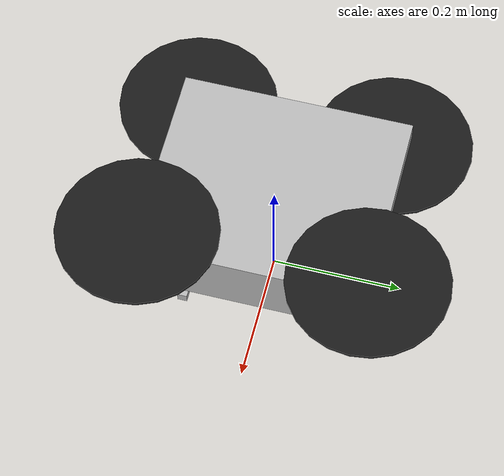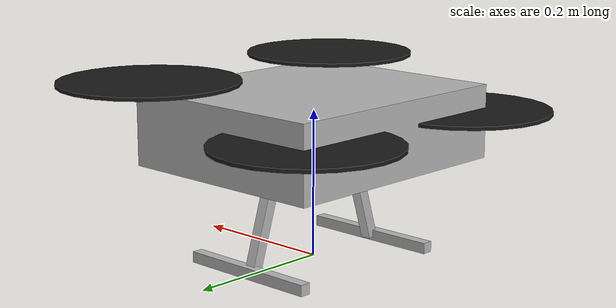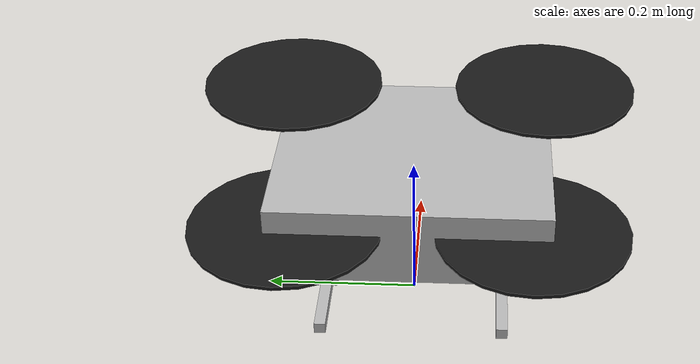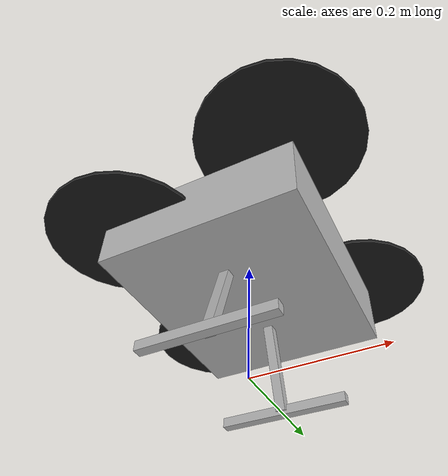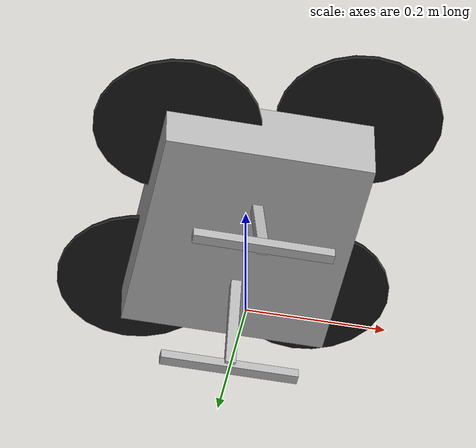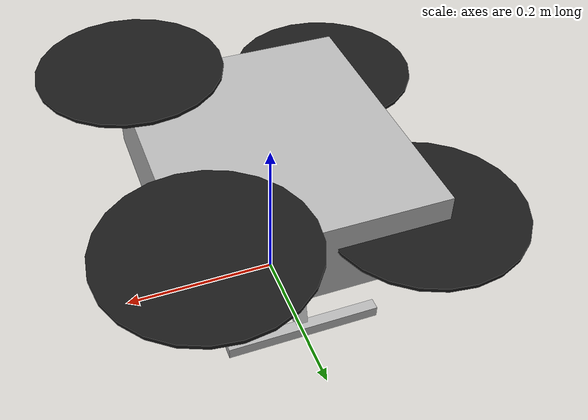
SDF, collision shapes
<?xml version="1.0" encoding="UTF-8"?>
<sdf version='1.9'>
  <model name='bq410'>
    <include merge='true'>
      <uri>model://bq410_base</uri>
    </include>

    <!-- Rotor 0 — front-right (CCW) → PX4 CA_ROTOR0 -->
    <plugin filename="gz-sim-multicopter-motor-model-system"
      name="gz::sim::systems::MulticopterMotorModel">
      <jointName>rotor_0_joint</jointName>
      <linkName>rotor_0</linkName>
      <turningDirection>ccw</turningDirection>
      <timeConstantUp>0.0125</timeConstantUp>
      <timeConstantDown>0.025</timeConstantDown>
      <maxRotVelocity>1100.0</maxRotVelocity>
      <motorConstant>8.54858e-06</motorConstant>
      <momentConstant>0.05</momentConstant>
      <commandSubTopic>command/motor_speed</commandSubTopic>
      <motorNumber>0</motorNumber>
      <rotorDragCoefficient>2.0673e-04</rotorDragCoefficient>
      <rollingMomentCoefficient>1e-06</rollingMomentCoefficient>
      <rotorVelocitySlowdownSim>10</rotorVelocitySlowdownSim>
      <motorType>velocity</motorType>
    </plugin>

    <!-- Rotor 1 — rear-left (CCW) → PX4 CA_ROTOR1 -->
    <plugin filename="gz-sim-multicopter-motor-model-system"
      name="gz::sim::systems::MulticopterMotorModel">
      <jointName>rotor_1_joint</jointName>
      <linkName>rotor_1</linkName>
      <turningDirection>ccw</turningDirection>
      <timeConstantUp>0.0125</timeConstantUp>
      <timeConstantDown>0.025</timeConstantDown>
      <maxRotVelocity>1100.0</maxRotVelocity>
      <motorConstant>8.54858e-06</motorConstant>
      <momentConstant>0.05</momentConstant>
      <commandSubTopic>command/motor_speed</commandSubTopic>
      <motorNumber>1</motorNumber>
      <rotorDragCoefficient>2.0673e-04</rotorDragCoefficient>
      <rollingMomentCoefficient>1e-06</rollingMomentCoefficient>
      <rotorVelocitySlowdownSim>10</rotorVelocitySlowdownSim>
      <motorType>velocity</motorType>
    </plugin>

    <!-- Rotor 2 — front-left (CW) → PX4 CA_ROTOR2 -->
    <plugin filename="gz-sim-multicopter-motor-model-system"
      name="gz::sim::systems::MulticopterMotorModel">
      <jointName>rotor_2_joint</jointName>
      <linkName>rotor_2</linkName>
      <turningDirection>cw</turningDirection>
      <timeConstantUp>0.0125</timeConstantUp>
      <timeConstantDown>0.025</timeConstantDown>
      <maxRotVelocity>1100.0</maxRotVelocity>
      <motorConstant>8.54858e-06</motorConstant>
      <momentConstant>0.05</momentConstant>
      <commandSubTopic>command/motor_speed</commandSubTopic>
      <motorNumber>2</motorNumber>
      <rotorDragCoefficient>2.0673e-04</rotorDragCoefficient>
      <rollingMomentCoefficient>1e-06</rollingMomentCoefficient>
      <rotorVelocitySlowdownSim>10</rotorVelocitySlowdownSim>
      <motorType>velocity</motorType>
    </plugin>

    <!-- Rotor 3 — rear-right (CW) → PX4 CA_ROTOR3 -->
    <plugin filename="gz-sim-multicopter-motor-model-system"
      name="gz::sim::systems::MulticopterMotorModel">
      <jointName>rotor_3_joint</jointName>
      <linkName>rotor_3</linkName>
      <turningDirection>cw</turningDirection>
      <timeConstantUp>0.0125</timeConstantUp>
      <timeConstantDown>0.025</timeConstantDown>
      <maxRotVelocity>1100.0</maxRotVelocity>
      <motorConstant>8.54858e-06</motorConstant>
      <momentConstant>0.05</momentConstant>
      <commandSubTopic>command/motor_speed</commandSubTopic>
      <motorNumber>3</motorNumber>
      <rotorDragCoefficient>2.0673e-04</rotorDragCoefficient>
      <rollingMomentCoefficient>1e-06</rollingMomentCoefficient>
      <rotorVelocitySlowdownSim>10</rotorVelocitySlowdownSim>
      <motorType>velocity</motorType>
    </plugin>
  </model>
</sdf>

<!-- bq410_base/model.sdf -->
<sdf version='1.9'>
  <model name='bq410_base'>
    <pose>0 0 0.18 0 0 0</pose>
    <self_collide>false</self_collide>
    <static>false</static>
    <link name="base_link">
      <inertial>
        <mass>2.1</mass>
        <inertia>
          <ixx>0.009749</ixx>
          <ixy>0</ixy>
          <ixz>0</ixz>
          <iyy>0.008251</iyy>
          <iyz>0</iyz>
          <izz>0.014972</izz>
        </inertia>
      </inertial>
      <gravity>true</gravity>
      <velocity_decay/>

      <!-- BQ-410 airframe visual (DAE authored in mm, scale to m) -->
      <visual name="base_link_visual">
        <pose>0 0 0 0 0 0</pose>
        <geometry>
          <mesh>
            <scale>0.001 0.001 0.001</scale>
            <uri>model://bq410_base/meshes/BQ-410.dae</uri>
          </mesh>
        </geometry>
      </visual>

      <!-- Body collision box -->
      <collision name="base_link_collision_0">
        <pose>0 0 0 0 0 0</pose>
        <geometry>
          <box>
            <size>0.30 0.35 0.10</size>
          </box>
        </geometry>
        <surface>
          <contact>
            <ode>
              <min_depth>0.001</min_depth>
              <max_vel>0</max_vel>
            </ode>
          </contact>
          <friction>
            <ode/>
          </friction>
        </surface>
      </collision>

      <!-- Landing gear collisions -->
      <collision name="base_link_collision_1">
        <pose>0 -0.09 -0.10 -0.30 0 0</pose>
        <geometry>
          <box>
            <size>0.015 0.015 0.16</size>
          </box>
        </geometry>
        <surface>
          <contact>
            <ode>
              <min_depth>0.001</min_depth>
              <max_vel>0</max_vel>
            </ode>
          </contact>
          <friction>
            <ode/>
          </friction>
        </surface>
      </collision>
      <collision name="base_link_collision_2">
        <pose>0 0.09 -0.10 0.30 0 0</pose>
        <geometry>
          <box>
            <size>0.015 0.015 0.16</size>
          </box>
        </geometry>
        <surface>
          <contact>
            <ode>
              <min_depth>0.001</min_depth>
              <max_vel>0</max_vel>
            </ode>
          </contact>
          <friction>
            <ode/>
          </friction>
        </surface>
      </collision>
      <collision name="base_link_collision_3">
        <pose>0 -0.12 -0.175 0 0 0</pose>
        <geometry>
          <box>
            <size>0.20 0.015 0.015</size>
          </box>
        </geometry>
        <surface>
          <contact>
            <ode>
              <min_depth>0.001</min_depth>
              <max_vel>0</max_vel>
            </ode>
          </contact>
          <friction>
            <ode/>
          </friction>
        </surface>
      </collision>
      <collision name="base_link_collision_4">
        <pose>0 0.12 -0.175 0 0 0</pose>
        <geometry>
          <box>
            <size>0.20 0.015 0.015</size>
          </box>
        </geometry>
        <surface>
          <contact>
            <ode>
              <min_depth>0.001</min_depth>
              <max_vel>0</max_vel>
            </ode>
          </contact>
          <friction>
            <ode/>
          </friction>
        </surface>
      </collision>

      <!-- Barometer -->
      <sensor name="air_pressure_sensor" type="air_pressure">
        <gz_frame_id>base_link</gz_frame_id>
        <always_on>1</always_on>
        <update_rate>50</update_rate>
        <air_pressure>
          <pressure>
            <noise type="gaussian">
              <mean>0</mean>
              <stddev>3</stddev>
            </noise>
          </pressure>
        </air_pressure>
      </sensor>

      <!-- Magnetometer -->
      <sensor name="magnetometer_sensor" type="magnetometer">
        <gz_frame_id>base_link</gz_frame_id>
        <always_on>1</always_on>
        <update_rate>100</update_rate>
        <magnetometer>
          <x>
            <noise type="gaussian">
              <stddev>0.0001</stddev>
            </noise>
          </x>
          <y>
            <noise type="gaussian">
              <stddev>0.0001</stddev>
            </noise>
          </y>
          <z>
            <noise type="gaussian">
              <stddev>0.0001</stddev>
            </noise>
          </z>
        </magnetometer>
      </sensor>

      <!-- IMU -->
      <sensor name="imu_sensor" type="imu">
        <gz_frame_id>base_link</gz_frame_id>
        <always_on>1</always_on>
        <update_rate>250</update_rate>
        <imu>
          <angular_velocity>
            <x>
              <noise type="gaussian">
                <mean>0.0</mean>
                <stddev>0.0008726646</stddev>
              </noise>
            </x>
            <y>
              <noise type="gaussian">
                <mean>0.0</mean>
                <stddev>0.0008726646</stddev>
              </noise>
            </y>
            <z>
              <noise type="gaussian">
                <mean>0.0</mean>
                <stddev>0.0008726646</stddev>
              </noise>
            </z>
          </angular_velocity>
          <linear_acceleration>
            <x>
              <noise type="gaussian">
                <mean>0.0</mean>
                <stddev>0.00637</stddev>
              </noise>
            </x>
            <y>
              <noise type="gaussian">
                <mean>0.0</mean>
                <stddev>0.00637</stddev>
              </noise>
            </y>
            <z>
              <noise type="gaussian">
                <mean>0.0</mean>
                <stddev>0.00686</stddev>
              </noise>
            </z>
          </linear_acceleration>
        </imu>
      </sensor>

      <!-- GNSS -->
      <sensor name="navsat_sensor" type="navsat">
        <gz_frame_id>base_link</gz_frame_id>
        <always_on>1</always_on>
        <update_rate>30</update_rate>
      </sensor>
    </link>

    <!-- ======== Rotor 0 — front-right (CCW) ======== -->
    <link name="rotor_0">
      <gravity>true</gravity>
      <self_collide>false</self_collide>
      <velocity_decay/>
      <pose>0.13 -0.17 0.063 0 0 0</pose>
      <inertial>
        <mass>0.025</mass>
        <inertia>
          <ixx>5.0e-06</ixx>
          <iyy>5.0e-06</iyy>
          <izz>1.0e-05</izz>
        </inertia>
      </inertial>
      <visual name="rotor_0_visual">
        <pose>0 0 0 0 0 0</pose>
        <geometry>
          <mesh>
            <scale>0.001 0.001 0.001</scale>
            <uri>model://bq410_base/meshes/BQ-410-ccw.stl</uri>
          </mesh>
        </geometry>
        <material>
          <ambient>0.1 0.1 0.1 1</ambient>
          <diffuse>0.1 0.1 0.1 1</diffuse>
          <specular>0.01 0.01 0.01 1</specular>
        </material>
      </visual>
      <collision name="rotor_0_collision">
        <pose>0 0 0 0 0 0</pose>
        <geometry>
          <cylinder>
            <radius>0.12</radius>
            <length>0.005</length>
          </cylinder>
        </geometry>
        <surface>
          <contact>
            <ode>
              <min_depth>0.001</min_depth>
              <max_vel>0</max_vel>
            </ode>
          </contact>
          <friction>
            <ode/>
          </friction>
        </surface>
      </collision>
    </link>
    <joint name="rotor_0_joint" type="revolute">
      <parent>base_link</parent>
      <child>rotor_0</child>
      <axis>
        <xyz>0 0 1</xyz>
        <limit>
          <lower>-1e+16</lower>
          <upper>1e+16</upper>
        </limit>
        <dynamics>
          <spring_reference>0</spring_reference>
          <spring_stiffness>0</spring_stiffness>
        </dynamics>
      </axis>
    </joint>

    <!-- ======== Rotor 1 — rear-left (CCW) ======== -->
    <link name="rotor_1">
      <gravity>true</gravity>
      <self_collide>false</self_collide>
      <velocity_decay/>
      <pose>-0.13 0.15 0.016 0 0 0</pose>
      <inertial>
        <mass>0.025</mass>
        <inertia>
          <ixx>5.0e-06</ixx>
          <iyy>5.0e-06</iyy>
          <izz>1.0e-05</izz>
        </inertia>
      </inertial>
      <visual name="rotor_1_visual">
        <pose>0 0 0 0 0 0</pose>
        <geometry>
          <mesh>
            <scale>0.001 0.001 0.001</scale>
            <uri>model://bq410_base/meshes/BQ-410-ccw.stl</uri>
          </mesh>
        </geometry>
        <material>
          <ambient>0.1 0.1 0.1 1</ambient>
          <diffuse>0.1 0.1 0.1 1</diffuse>
          <specular>0.01 0.01 0.01 1</specular>
        </material>
      </visual>
      <collision name="rotor_1_collision">
        <pose>0 0 0 0 0 0</pose>
        <geometry>
          <cylinder>
            <radius>0.12</radius>
            <length>0.005</length>
          </cylinder>
        </geometry>
        <surface>
          <contact>
            <ode>
              <min_depth>0.001</min_depth>
              <max_vel>0</max_vel>
            </ode>
          </contact>
          <friction>
            <ode/>
          </friction>
        </surface>
      </collision>
    </link>
    <joint name="rotor_1_joint" type="revolute">
      <parent>base_link</parent>
      <child>rotor_1</child>
      <axis>
        <xyz>0 0 1</xyz>
        <limit>
          <lower>-1e+16</lower>
          <upper>1e+16</upper>
        </limit>
        <dynamics>
          <spring_reference>0</spring_reference>
          <spring_stiffness>0</spring_stiffness>
        </dynamics>
      </axis>
    </joint>

    <!-- ======== Rotor 2 — front-left (CW) ======== -->
    <link name="rotor_2">
      <gravity>true</gravity>
      <self_collide>false</self_collide>
      <velocity_decay/>
      <pose>0.13 0.17 0.063 0 0 0</pose>
      <inertial>
        <mass>0.025</mass>
        <inertia>
          <ixx>5.0e-06</ixx>
          <iyy>5.0e-06</iyy>
          <izz>1.0e-05</izz>
        </inertia>
      </inertial>
      <visual name="rotor_2_visual">
        <pose>0 0 0 0 0 0</pose>
        <geometry>
          <mesh>
            <scale>0.001 0.001 0.001</scale>
            <uri>model://bq410_base/meshes/BQ-410-cw.stl</uri>
          </mesh>
        </geometry>
        <material>
          <ambient>0.1 0.1 0.1 1</ambient>
          <diffuse>0.1 0.1 0.1 1</diffuse>
          <specular>0.01 0.01 0.01 1</specular>
        </material>
      </visual>
      <collision name="rotor_2_collision">
        <pose>0 0 0 0 0 0</pose>
        <geometry>
          <cylinder>
            <radius>0.12</radius>
            <length>0.005</length>
          </cylinder>
        </geometry>
        <surface>
          <contact>
            <ode>
              <min_depth>0.001</min_depth>
              <max_vel>0</max_vel>
            </ode>
          </contact>
          <friction>
            <ode/>
          </friction>
        </surface>
      </collision>
    </link>
    <joint name="rotor_2_joint" type="revolute">
      <parent>base_link</parent>
      <child>rotor_2</child>
      <axis>
        <xyz>0 0 1</xyz>
        <limit>
          <lower>-1e+16</lower>
          <upper>1e+16</upper>
        </limit>
        <dynamics>
          <spring_reference>0</spring_reference>
          <spring_stiffness>0</spring_stiffness>
        </dynamics>
      </axis>
    </joint>

    <!-- ======== Rotor 3 — rear-right (CW) ======== -->
    <link name="rotor_3">
      <gravity>true</gravity>
      <self_collide>false</self_collide>
      <velocity_decay/>
      <pose>-0.13 -0.15 0.016 0 0 0</pose>
      <inertial>
        <mass>0.025</mass>
        <inertia>
          <ixx>5.0e-06</ixx>
          <iyy>5.0e-06</iyy>
          <izz>1.0e-05</izz>
        </inertia>
      </inertial>
      <visual name="rotor_3_visual">
        <pose>0 0 0 0 0 0</pose>
        <geometry>
          <mesh>
            <scale>0.001 0.001 0.001</scale>
            <uri>model://bq410_base/meshes/BQ-410-cw.stl</uri>
          </mesh>
        </geometry>
        <material>
          <ambient>0.1 0.1 0.1 1</ambient>
          <diffuse>0.1 0.1 0.1 1</diffuse>
          <specular>0.01 0.01 0.01 1</specular>
        </material>
      </visual>
      <collision name="rotor_3_collision">
        <pose>0 0 0 0 0 0</pose>
        <geometry>
          <cylinder>
            <radius>0.12</radius>
            <length>0.005</length>
          </cylinder>
        </geometry>
        <surface>
          <contact>
            <ode>
              <min_depth>0.001</min_depth>
              <max_vel>0</max_vel>
            </ode>
          </contact>
          <friction>
            <ode/>
          </friction>
        </surface>
      </collision>
    </link>
    <joint name="rotor_3_joint" type="revolute">
      <parent>base_link</parent>
      <child>rotor_3</child>
      <axis>
        <xyz>0 0 1</xyz>
        <limit>
          <lower>-1e+16</lower>
          <upper>1e+16</upper>
        </limit>
        <dynamics>
          <spring_reference>0</spring_reference>
          <spring_stiffness>0</spring_stiffness>
        </dynamics>
      </axis>
    </joint>
  </model>
</sdf>
